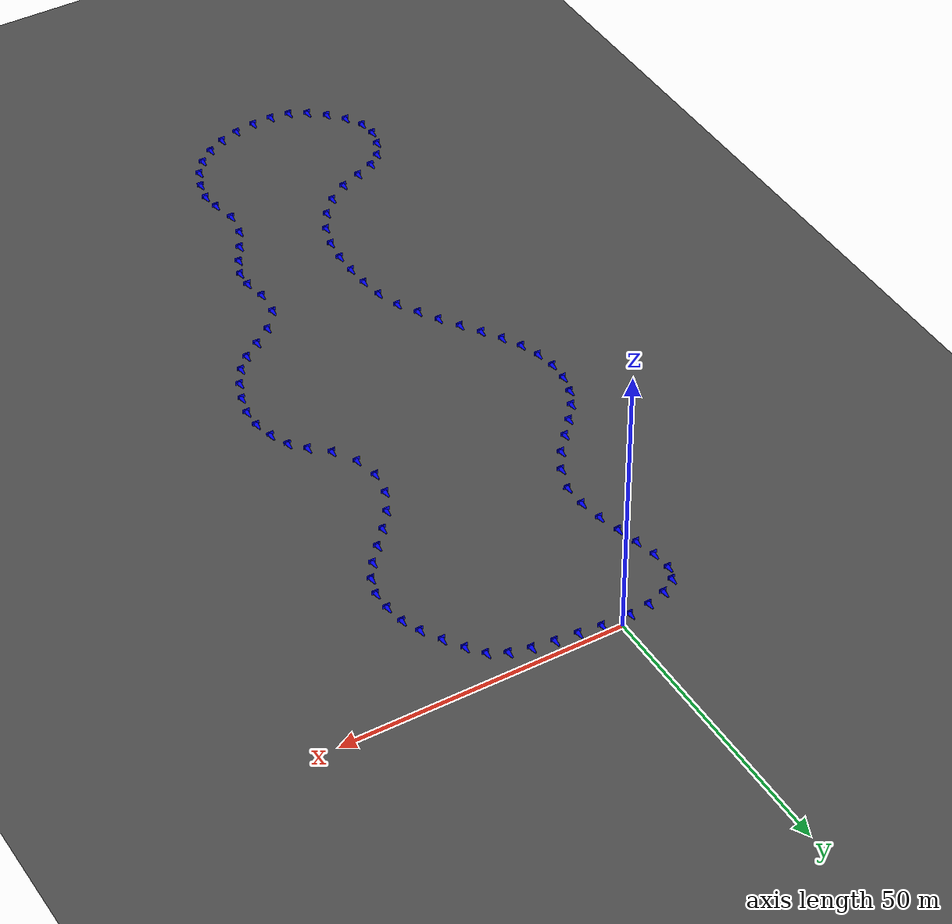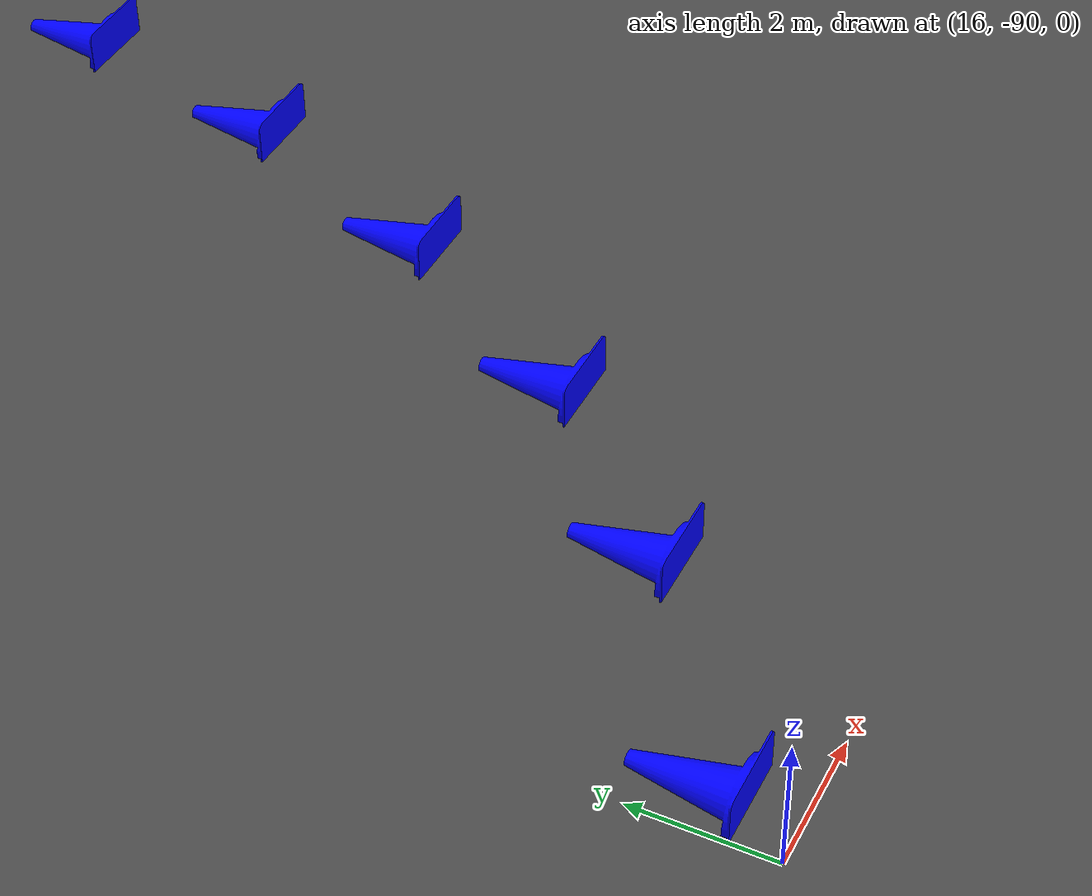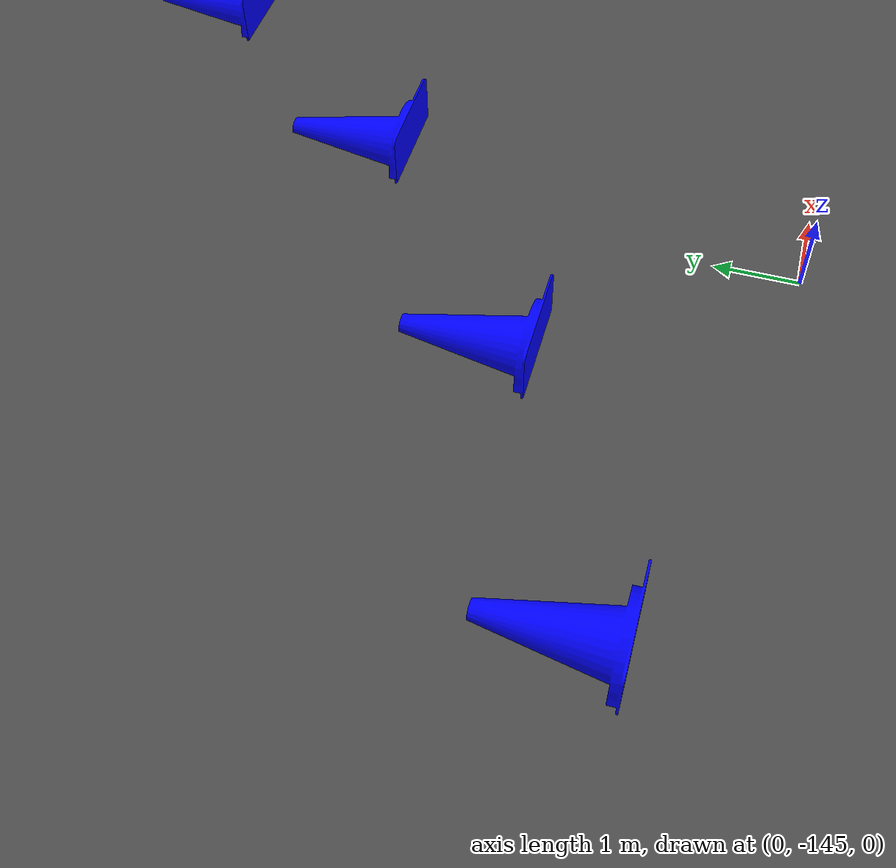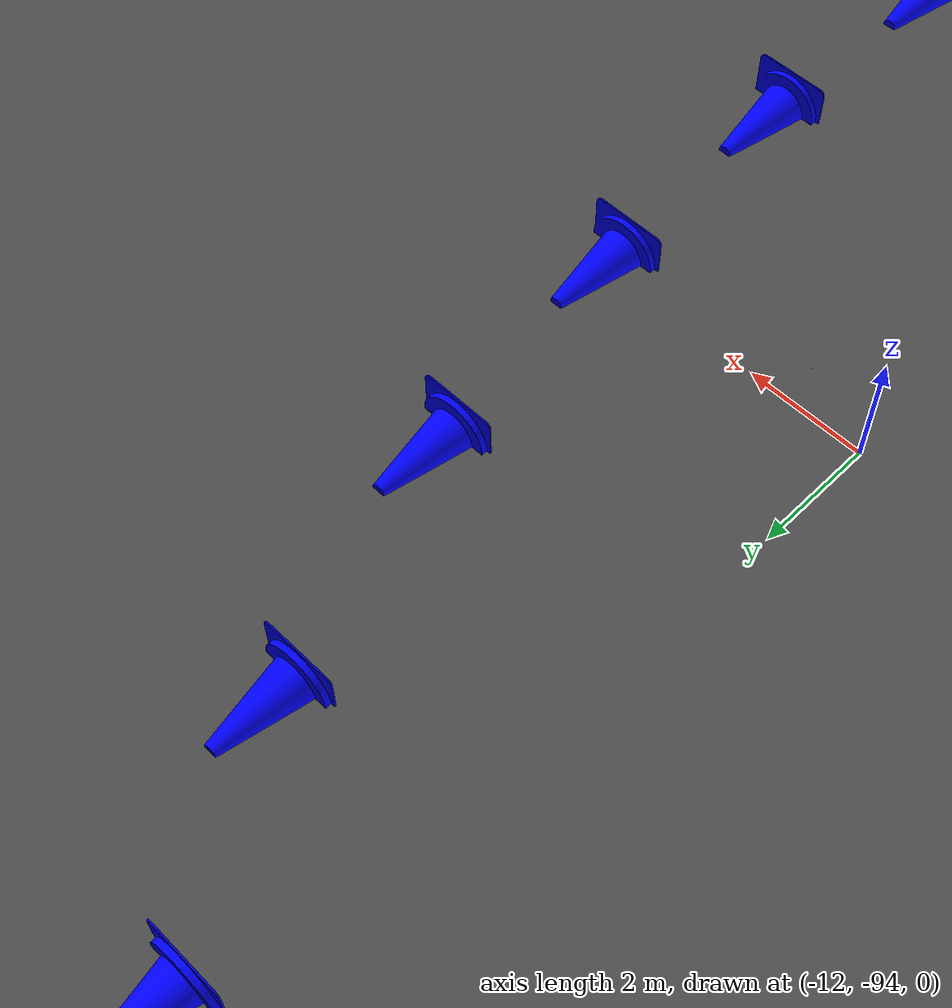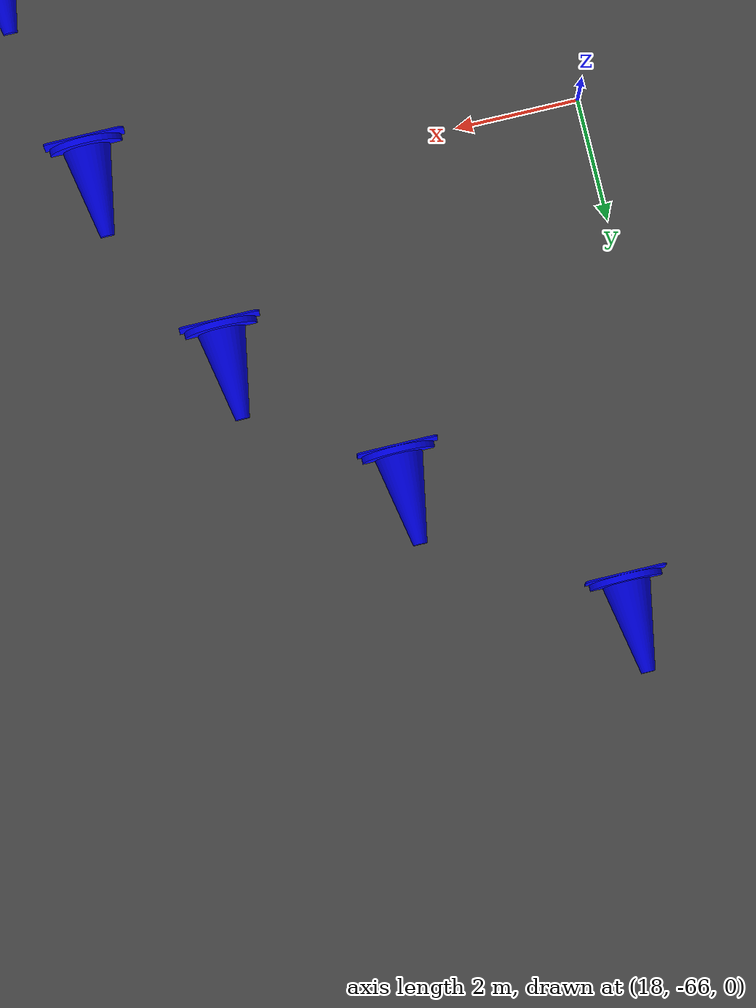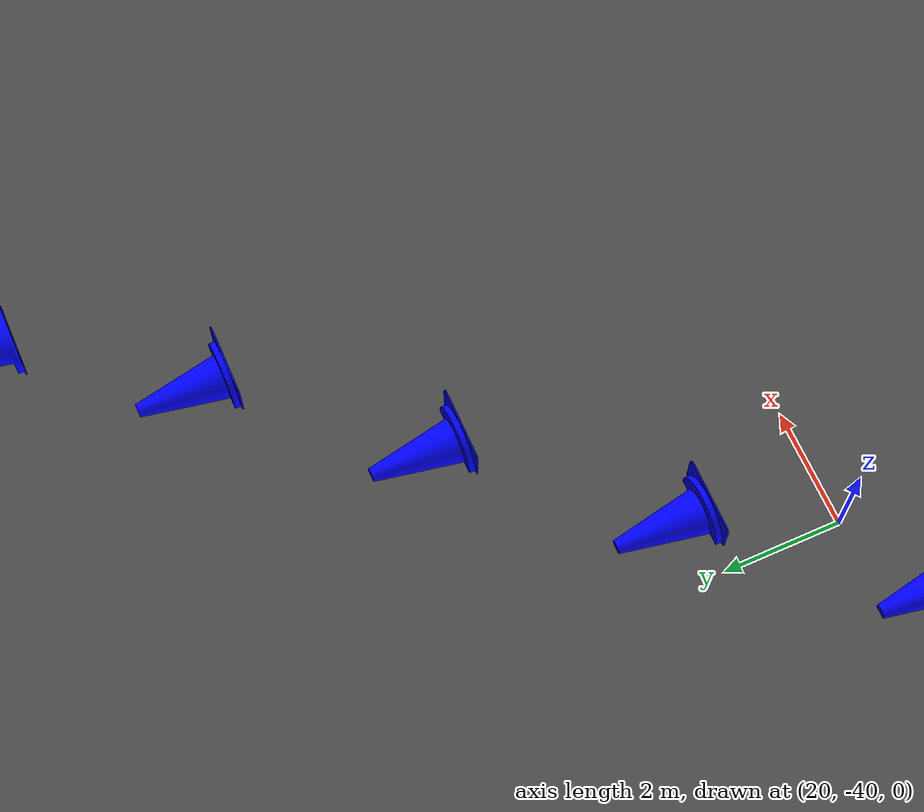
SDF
<sdf version="1.7">
 <world name="generated_world">
  <scene><sky><clouds><speed>12</speed></clouds></sky><grid>false</grid><shadows>1</shadows></scene>
  <physics type="ode">
   <max_step_size>0.001</max_step_size>
   <real_time_update_rate>1000</real_time_update_rate>
  </physics>
  <include><uri>model://sun</uri></include>
  <model name="asphalt_ground">
   <static>1</static>
   <link name="link">
    <collision name="collision">
     <geometry><plane><normal>0 0 1</normal><size>300 300</size></plane></geometry>
     <surface><friction><ode><mu>100</mu><mu2>50</mu2></ode></friction></surface>
    </collision>
    <visual name="visual">
     <geometry><plane><normal>0 0 1</normal><size>300 300</size></plane></geometry>
     <material>
      <script><uri>file://media/materials/scripts/gazebo.material</uri><name>Gazebo/Asphalt</name></script>
     </material>
    </visual>
   </link>
  </model>
  <include><uri>model://cone_yellow</uri><name>cone_yellow_001</name><pose>3.197 1.684 0 0 0 0</pose></include>
  <include><uri>model://cone_yellow</uri><name>cone_yellow_002</name><pose>7.122 1.213 0 0 0 0</pose></include>
  <include><uri>model://cone_yellow</uri><name>cone_yellow_003</name><pose>11.119 0.767 0 0 0 0</pose></include>
  <include><uri>model://cone_yellow</uri><name>cone_yellow_004</name><pose>15.181 0.193 0 0 0 0</pose></include>
  <include>
   <uri>model://cone_yellow</uri>
   <name>cone_yellow_005</name>
   <pose>19.338 -0.890 0 0 0 0</pose>
  </include>
  <include>
   <uri>model://cone_yellow</uri>
   <name>cone_yellow_006</name>
   <pose>23.351 -3.085 0 0 0 0</pose>
  </include>
  <include>
   <uri>model://cone_yellow</uri>
   <name>cone_yellow_007</name>
   <pose>26.184 -6.527 0 0 0 0</pose>
  </include>
  <include>
   <uri>model://cone_yellow</uri>
   <name>cone_yellow_008</name>
   <pose>28.433 -9.979 0 0 0 0</pose>
  </include>
  <include>
   <uri>model://cone_yellow</uri>
   <name>cone_yellow_009</name>
   <pose>30.431 -13.511 0 0 0 0</pose>
  </include>
  <include>
   <uri>model://cone_yellow</uri>
   <name>cone_yellow_010</name>
   <pose>32.136 -17.618 0 0 0 0</pose>
  </include>
  <include>
   <uri>model://cone_yellow</uri>
   <name>cone_yellow_011</name>
   <pose>32.737 -21.823 0 0 0 0</pose>
  </include>
  <include>
   <uri>model://cone_yellow</uri>
   <name>cone_yellow_012</name>
   <pose>32.688 -26.233 0 0 0 0</pose>
  </include>
  <include>
   <uri>model://cone_yellow</uri>
   <name>cone_yellow_013</name>
   <pose>31.369 -30.542 0 0 0 0</pose>
  </include>
  <include>
   <uri>model://cone_yellow</uri>
   <name>cone_yellow_014</name>
   <pose>28.975 -34.197 0 0 0 0</pose>
  </include>
  <include>
   <uri>model://cone_yellow</uri>
   <name>cone_yellow_015</name>
   <pose>26.334 -37.338 0 0 0 0</pose>
  </include>
  <include>
   <uri>model://cone_yellow</uri>
   <name>cone_yellow_016</name>
   <pose>23.710 -40.346 0 0 0 0</pose>
  </include>
  <include>
   <uri>model://cone_yellow</uri>
   <name>cone_yellow_017</name>
   <pose>21.326 -43.361 0 0 0 0</pose>
  </include>
  <include>
   <uri>model://cone_yellow</uri>
   <name>cone_yellow_018</name>
   <pose>19.756 -46.447 0 0 0 0</pose>
  </include>
  <include>
   <uri>model://cone_yellow</uri>
   <name>cone_yellow_019</name>
   <pose>19.249 -49.760 0 0 0 0</pose>
  </include>
  <include>
   <uri>model://cone_yellow</uri>
   <name>cone_yellow_020</name>
   <pose>19.963 -53.141 0 0 0 0</pose>
  </include>
  <include>
   <uri>model://cone_yellow</uri>
   <name>cone_yellow_021</name>
   <pose>21.626 -55.902 0 0 0 0</pose>
  </include>
  <include>
   <uri>model://cone_yellow</uri>
   <name>cone_yellow_022</name>
   <pose>24.478 -58.544 0 0 0 0</pose>
  </include>
  <include>
   <uri>model://cone_yellow</uri>
   <name>cone_yellow_023</name>
   <pose>27.421 -61.984 0 0 0 0</pose>
  </include>
  <include>
   <uri>model://cone_yellow</uri>
   <name>cone_yellow_024</name>
   <pose>29.118 -65.986 0 0 0 0</pose>
  </include>
  <include>
   <uri>model://cone_yellow</uri>
   <name>cone_yellow_025</name>
   <pose>30.031 -70.254 0 0 0 0</pose>
  </include>
  <include>
   <uri>model://cone_yellow</uri>
   <name>cone_yellow_026</name>
   <pose>29.912 -74.676 0 0 0 0</pose>
  </include>
  <include>
   <uri>model://cone_yellow</uri>
   <name>cone_yellow_027</name>
   <pose>28.874 -78.847 0 0 0 0</pose>
  </include>
  <include>
   <uri>model://cone_yellow</uri>
   <name>cone_yellow_028</name>
   <pose>27.242 -82.763 0 0 0 0</pose>
  </include>
  <include>
   <uri>model://cone_yellow</uri>
   <name>cone_yellow_029</name>
   <pose>25.074 -86.424 0 0 0 0</pose>
  </include>
  <include>
   <uri>model://cone_yellow</uri>
   <name>cone_yellow_030</name>
   <pose>21.994 -89.666 0 0 0 0</pose>
  </include>
  <include>
   <uri>model://cone_yellow</uri>
   <name>cone_yellow_031</name>
   <pose>18.642 -92.087 0 0 0 0</pose>
  </include>
  <include>
   <uri>model://cone_yellow</uri>
   <name>cone_yellow_032</name>
   <pose>15.556 -94.360 0 0 0 0</pose>
  </include>
  <include>
   <uri>model://cone_yellow</uri>
   <name>cone_yellow_033</name>
   <pose>13.571 -96.767 0 0 0 0</pose>
  </include>
  <include>
   <uri>model://cone_yellow</uri>
   <name>cone_yellow_034</name>
   <pose>13.372 -99.815 0 0 0 0</pose>
  </include>
  <include>
   <uri>model://cone_yellow</uri>
   <name>cone_yellow_035</name>
   <pose>14.025 -103.784 0 0 0 0</pose>
  </include>
  <include>
   <uri>model://cone_yellow</uri>
   <name>cone_yellow_036</name>
   <pose>13.699 -108.450 0 0 0 0</pose>
  </include>
  <include>
   <uri>model://cone_yellow</uri>
   <name>cone_yellow_037</name>
   <pose>11.925 -112.434 0 0 0 0</pose>
  </include>
  <include>
   <uri>model://cone_yellow</uri>
   <name>cone_yellow_038</name>
   <pose>9.906 -115.936 0 0 0 0</pose>
  </include>
  <include>
   <uri>model://cone_yellow</uri>
   <name>cone_yellow_039</name>
   <pose>8.196 -119.283 0 0 0 0</pose>
  </include>
  <include>
   <uri>model://cone_yellow</uri>
   <name>cone_yellow_040</name>
   <pose>7.655 -122.404 0 0 0 0</pose>
  </include>
  <include>
   <uri>model://cone_yellow</uri>
   <name>cone_yellow_041</name>
   <pose>8.419 -125.992 0 0 0 0</pose>
  </include>
  <include>
   <uri>model://cone_yellow</uri>
   <name>cone_yellow_042</name>
   <pose>8.920 -130.606 0 0 0 0</pose>
  </include>
  <include>
   <uri>model://cone_yellow</uri>
   <name>cone_yellow_043</name>
   <pose>7.909 -134.820 0 0 0 0</pose>
  </include>
  <include>
   <uri>model://cone_yellow</uri>
   <name>cone_yellow_044</name>
   <pose>6.163 -138.787 0 0 0 0</pose>
  </include>
  <include>
   <uri>model://cone_yellow</uri>
   <name>cone_yellow_045</name>
   <pose>3.499 -142.333 0 0 0 0</pose>
  </include>
  <include>
   <uri>model://cone_yellow</uri>
   <name>cone_yellow_046</name>
   <pose>0.156 -145.117 0 0 0 0</pose>
  </include>
  <include>
   <uri>model://cone_yellow</uri>
   <name>cone_yellow_047</name>
   <pose>-3.690 -147.165 0 0 0 0</pose>
  </include>
  <include>
   <uri>model://cone_yellow</uri>
   <name>cone_yellow_048</name>
   <pose>-7.822 -148.368 0 0 0 0</pose>
  </include>
  <include>
   <uri>model://cone_yellow</uri>
   <name>cone_yellow_049</name>
   <pose>-11.954 -149.016 0 0 0 0</pose>
  </include>
  <include>
   <uri>model://cone_yellow</uri>
   <name>cone_yellow_050</name>
   <pose>-16.214 -149.153 0 0 0 0</pose>
  </include>
  <include>
   <uri>model://cone_yellow</uri>
   <name>cone_yellow_051</name>
   <pose>-20.597 -148.425 0 0 0 0</pose>
  </include>
  <include>
   <uri>model://cone_yellow</uri>
   <name>cone_yellow_052</name>
   <pose>-24.606 -146.336 0 0 0 0</pose>
  </include>
  <include>
   <uri>model://cone_yellow</uri>
   <name>cone_yellow_053</name>
   <pose>-27.867 -143.547 0 0 0 0</pose>
  </include>
  <include>
   <uri>model://cone_yellow</uri>
   <name>cone_yellow_054</name>
   <pose>-30.646 -140.299 0 0 0 0</pose>
  </include>
  <include>
   <uri>model://cone_yellow</uri>
   <name>cone_yellow_055</name>
   <pose>-32.831 -136.395 0 0 0 0</pose>
  </include>
  <include>
   <uri>model://cone_yellow</uri>
   <name>cone_yellow_056</name>
   <pose>-33.408 -131.714 0 0 0 0</pose>
  </include>
  <include>
   <uri>model://cone_yellow</uri>
   <name>cone_yellow_057</name>
   <pose>-32.329 -127.342 0 0 0 0</pose>
  </include>
  <include>
   <uri>model://cone_yellow</uri>
   <name>cone_yellow_058</name>
   <pose>-30.155 -123.465 0 0 0 0</pose>
  </include>
  <include>
   <uri>model://cone_yellow</uri>
   <name>cone_yellow_059</name>
   <pose>-26.545 -120.421 0 0 0 0</pose>
  </include>
  <include>
   <uri>model://cone_yellow</uri>
   <name>cone_yellow_060</name>
   <pose>-22.642 -118.787 0 0 0 0</pose>
  </include>
  <include>
   <uri>model://cone_yellow</uri>
   <name>cone_yellow_061</name>
   <pose>-19.059 -117.369 0 0 0 0</pose>
  </include>
  <include>
   <uri>model://cone_yellow</uri>
   <name>cone_yellow_062</name>
   <pose>-16.238 -115.436 0 0 0 0</pose>
  </include>
  <include>
   <uri>model://cone_yellow</uri>
   <name>cone_yellow_063</name>
   <pose>-13.779 -112.693 0 0 0 0</pose>
  </include>
  <include>
   <uri>model://cone_yellow</uri>
   <name>cone_yellow_064</name>
   <pose>-11.950 -109.578 0 0 0 0</pose>
  </include>
  <include>
   <uri>model://cone_yellow</uri>
   <name>cone_yellow_065</name>
   <pose>-10.828 -106.149 0 0 0 0</pose>
  </include>
  <include>
   <uri>model://cone_yellow</uri>
   <name>cone_yellow_066</name>
   <pose>-10.374 -102.431 0 0 0 0</pose>
  </include>
  <include>
   <uri>model://cone_yellow</uri>
   <name>cone_yellow_067</name>
   <pose>-10.326 -98.575 0 0 0 0</pose>
  </include>
  <include>
   <uri>model://cone_yellow</uri>
   <name>cone_yellow_068</name>
   <pose>-10.560 -94.695 0 0 0 0</pose>
  </include>
  <include>
   <uri>model://cone_yellow</uri>
   <name>cone_yellow_069</name>
   <pose>-11.083 -90.897 0 0 0 0</pose>
  </include>
  <include>
   <uri>model://cone_yellow</uri>
   <name>cone_yellow_070</name>
   <pose>-12.175 -87.565 0 0 0 0</pose>
  </include>
  <include>
   <uri>model://cone_yellow</uri>
   <name>cone_yellow_071</name>
   <pose>-14.090 -84.218 0 0 0 0</pose>
  </include>
  <include>
   <uri>model://cone_yellow</uri>
   <name>cone_yellow_072</name>
   <pose>-16.078 -80.827 0 0 0 0</pose>
  </include>
  <include>
   <uri>model://cone_yellow</uri>
   <name>cone_yellow_073</name>
   <pose>-18.287 -77.560 0 0 0 0</pose>
  </include>
  <include>
   <uri>model://cone_yellow</uri>
   <name>cone_yellow_074</name>
   <pose>-20.578 -74.249 0 0 0 0</pose>
  </include>
  <include>
   <uri>model://cone_yellow</uri>
   <name>cone_yellow_075</name>
   <pose>-22.807 -70.826 0 0 0 0</pose>
  </include>
  <include>
   <uri>model://cone_yellow</uri>
   <name>cone_yellow_076</name>
   <pose>-24.823 -67.137 0 0 0 0</pose>
  </include>
  <include>
   <uri>model://cone_yellow</uri>
   <name>cone_yellow_077</name>
   <pose>-26.233 -63.060 0 0 0 0</pose>
  </include>
  <include>
   <uri>model://cone_yellow</uri>
   <name>cone_yellow_078</name>
   <pose>-26.950 -58.823 0 0 0 0</pose>
  </include>
  <include>
   <uri>model://cone_yellow</uri>
   <name>cone_yellow_079</name>
   <pose>-26.809 -54.457 0 0 0 0</pose>
  </include>
  <include>
   <uri>model://cone_yellow</uri>
   <name>cone_yellow_080</name>
   <pose>-25.766 -50.253 0 0 0 0</pose>
  </include>
  <include>
   <uri>model://cone_yellow</uri>
   <name>cone_yellow_081</name>
   <pose>-23.701 -46.305 0 0 0 0</pose>
  </include>
  <include>
   <uri>model://cone_yellow</uri>
   <name>cone_yellow_082</name>
   <pose>-21.118 -43.017 0 0 0 0</pose>
  </include>
  <include>
   <uri>model://cone_yellow</uri>
   <name>cone_yellow_083</name>
   <pose>-18.442 -39.989 0 0 0 0</pose>
  </include>
  <include>
   <uri>model://cone_yellow</uri>
   <name>cone_yellow_084</name>
   <pose>-15.929 -37.021 0 0 0 0</pose>
  </include>
  <include>
   <uri>model://cone_yellow</uri>
   <name>cone_yellow_085</name>
   <pose>-13.988 -33.866 0 0 0 0</pose>
  </include>
  <include>
   <uri>model://cone_yellow</uri>
   <name>cone_yellow_086</name>
   <pose>-12.875 -30.801 0 0 0 0</pose>
  </include>
  <include>
   <uri>model://cone_yellow</uri>
   <name>cone_yellow_087</name>
   <pose>-12.887 -27.045 0 0 0 0</pose>
  </include>
  <include>
   <uri>model://cone_yellow</uri>
   <name>cone_yellow_088</name>
   <pose>-13.489 -23.430 0 0 0 0</pose>
  </include>
  <include>
   <uri>model://cone_yellow</uri>
   <name>cone_yellow_089</name>
   <pose>-14.460 -19.610 0 0 0 0</pose>
  </include>
  <include>
   <uri>model://cone_yellow</uri>
   <name>cone_yellow_090</name>
   <pose>-15.474 -15.688 0 0 0 0</pose>
  </include>
  <include>
   <uri>model://cone_yellow</uri>
   <name>cone_yellow_091</name>
   <pose>-16.334 -11.649 0 0 0 0</pose>
  </include>
  <include>
   <uri>model://cone_yellow</uri>
   <name>cone_yellow_092</name>
   <pose>-16.681 -7.269 0 0 0 0</pose>
  </include>
  <include>
   <uri>model://cone_yellow</uri>
   <name>cone_yellow_093</name>
   <pose>-14.830 -2.582 0 0 0 0</pose>
  </include>
  <include>
   <uri>model://cone_yellow</uri>
   <name>cone_yellow_094</name>
   <pose>-10.935 0.094 0 0 0 0</pose>
  </include>
  <include><uri>model://cone_yellow</uri><name>cone_yellow_095</name><pose>-6.739 1.345 0 0 0 0</pose></include>
  <include><uri>model://cone_yellow</uri><name>cone_yellow_096</name><pose>-2.491 1.820 0 0 0 0</pose></include>
  <include><uri>model://cone_blue</uri><name>cone_blue_001</name><pose>2.723 -1.784 0 0 0 0</pose></include>
  <include><uri>model://cone_blue</uri><name>cone_blue_002</name><pose>6.738 -2.266 0 0 0 0</pose></include>
  <include><uri>model://cone_blue</uri><name>cone_blue_003</name><pose>10.706 -2.709 0 0 0 0</pose></include>
  <include><uri>model://cone_blue</uri><name>cone_blue_004</name><pose>14.574 -3.254 0 0 0 0</pose></include>
  <include><uri>model://cone_blue</uri><name>cone_blue_005</name><pose>18.131 -4.175 0 0 0 0</pose></include>
  <include><uri>model://cone_blue</uri><name>cone_blue_006</name><pose>21.125 -5.786 0 0 0 0</pose></include>
  <include><uri>model://cone_blue</uri><name>cone_blue_007</name><pose>23.310 -8.525 0 0 0 0</pose></include>
  <include><uri>model://cone_blue</uri><name>cone_blue_008</name><pose>25.434 -11.783 0 0 0 0</pose></include>
  <include><uri>model://cone_blue</uri><name>cone_blue_009</name><pose>27.369 -15.206 0 0 0 0</pose></include>
  <include><uri>model://cone_blue</uri><name>cone_blue_010</name><pose>28.736 -18.449 0 0 0 0</pose></include>
  <include><uri>model://cone_blue</uri><name>cone_blue_011</name><pose>29.254 -22.165 0 0 0 0</pose></include>
  <include><uri>model://cone_blue</uri><name>cone_blue_012</name><pose>29.225 -25.727 0 0 0 0</pose></include>
  <include><uri>model://cone_blue</uri><name>cone_blue_013</name><pose>28.206 -29.044 0 0 0 0</pose></include>
  <include><uri>model://cone_blue</uri><name>cone_blue_014</name><pose>26.225 -32.032 0 0 0 0</pose></include>
  <include><uri>model://cone_blue</uri><name>cone_blue_015</name><pose>23.699 -35.033 0 0 0 0</pose></include>
  <include><uri>model://cone_blue</uri><name>cone_blue_016</name><pose>21.047 -38.074 0 0 0 0</pose></include>
  <include><uri>model://cone_blue</uri><name>cone_blue_017</name><pose>18.456 -41.358 0 0 0 0</pose></include>
  <include><uri>model://cone_blue</uri><name>cone_blue_018</name><pose>16.434 -45.346 0 0 0 0</pose></include>
  <include><uri>model://cone_blue</uri><name>cone_blue_019</name><pose>15.751 -49.888 0 0 0 0</pose></include>
  <include><uri>model://cone_blue</uri><name>cone_blue_020</name><pose>16.662 -54.305 0 0 0 0</pose></include>
  <include><uri>model://cone_blue</uri><name>cone_blue_021</name><pose>19.090 -58.315 0 0 0 0</pose></include>
  <include><uri>model://cone_blue</uri><name>cone_blue_022</name><pose>22.109 -61.120 0 0 0 0</pose></include>
  <include><uri>model://cone_blue</uri><name>cone_blue_023</name><pose>24.378 -63.713 0 0 0 0</pose></include>
  <include><uri>model://cone_blue</uri><name>cone_blue_024</name><pose>25.788 -67.063 0 0 0 0</pose></include>
  <include><uri>model://cone_blue</uri><name>cone_blue_025</name><pose>26.548 -70.604 0 0 0 0</pose></include>
  <include><uri>model://cone_blue</uri><name>cone_blue_026</name><pose>26.453 -74.142 0 0 0 0</pose></include>
  <include><uri>model://cone_blue</uri><name>cone_blue_027</name><pose>25.557 -77.730 0 0 0 0</pose></include>
  <include><uri>model://cone_blue</uri><name>cone_blue_028</name><pose>24.111 -81.198 0 0 0 0</pose></include>
  <include><uri>model://cone_blue</uri><name>cone_blue_029</name><pose>22.204 -84.421 0 0 0 0</pose></include>
  <include><uri>model://cone_blue</uri><name>cone_blue_030</name><pose>19.803 -86.937 0 0 0 0</pose></include>
  <include><uri>model://cone_blue</uri><name>cone_blue_031</name><pose>16.658 -89.204 0 0 0 0</pose></include>
  <include><uri>model://cone_blue</uri><name>cone_blue_032</name><pose>13.292 -91.691 0 0 0 0</pose></include>
  <include><uri>model://cone_blue</uri><name>cone_blue_033</name><pose>10.325 -95.459 0 0 0 0</pose></include>
  <include><uri>model://cone_blue</uri><name>cone_blue_034</name><pose>9.902 -100.275 0 0 0 0</pose></include>
  <include><uri>model://cone_blue</uri><name>cone_blue_035</name><pose>10.550 -104.202 0 0 0 0</pose></include>
  <include><uri>model://cone_blue</uri><name>cone_blue_036</name><pose>10.350 -107.433 0 0 0 0</pose></include>
  <include><uri>model://cone_blue</uri><name>cone_blue_037</name><pose>8.856 -110.753 0 0 0 0</pose></include>
  <include><uri>model://cone_blue</uri><name>cone_blue_038</name><pose>6.874 -114.188 0 0 0 0</pose></include>
  <include><uri>model://cone_blue</uri><name>cone_blue_039</name><pose>4.947 -117.981 0 0 0 0</pose></include>
  <include><uri>model://cone_blue</uri><name>cone_blue_040</name><pose>4.164 -122.652 0 0 0 0</pose></include>
  <include><uri>model://cone_blue</uri><name>cone_blue_041</name><pose>5.034 -126.882 0 0 0 0</pose></include>
  <include><uri>model://cone_blue</uri><name>cone_blue_042</name><pose>5.449 -130.157 0 0 0 0</pose></include>
  <include><uri>model://cone_blue</uri><name>cone_blue_043</name><pose>4.589 -133.712 0 0 0 0</pose></include>
  <include><uri>model://cone_blue</uri><name>cone_blue_044</name><pose>3.118 -137.061 0 0 0 0</pose></include>
  <include><uri>model://cone_blue</uri><name>cone_blue_045</name><pose>0.994 -139.888 0 0 0 0</pose></include>
  <include><uri>model://cone_blue</uri><name>cone_blue_046</name><pose>-1.799 -142.214 0 0 0 0</pose></include>
  <include><uri>model://cone_blue</uri><name>cone_blue_047</name><pose>-5.002 -143.921 0 0 0 0</pose></include>
  <include><uri>model://cone_blue</uri><name>cone_blue_048</name><pose>-8.540 -144.942 0 0 0 0</pose></include>
  <include><uri>model://cone_blue</uri><name>cone_blue_049</name><pose>-12.307 -145.533 0 0 0 0</pose></include>
  <include><uri>model://cone_blue</uri><name>cone_blue_050</name><pose>-16.049 -145.657 0 0 0 0</pose></include>
  <include><uri>model://cone_blue</uri><name>cone_blue_051</name><pose>-19.538 -145.089 0 0 0 0</pose></include>
  <include><uri>model://cone_blue</uri><name>cone_blue_052</name><pose>-22.574 -143.486 0 0 0 0</pose></include>
  <include><uri>model://cone_blue</uri><name>cone_blue_053</name><pose>-25.387 -141.077 0 0 0 0</pose></include>
  <include><uri>model://cone_blue</uri><name>cone_blue_054</name><pose>-27.812 -138.244 0 0 0 0</pose></include>
  <include><uri>model://cone_blue</uri><name>cone_blue_055</name><pose>-29.551 -135.174 0 0 0 0</pose></include>
  <include><uri>model://cone_blue</uri><name>cone_blue_056</name><pose>-29.922 -132.018 0 0 0 0</pose></include>
  <include><uri>model://cone_blue</uri><name>cone_blue_057</name><pose>-29.083 -128.650 0 0 0 0</pose></include>
  <include><uri>model://cone_blue</uri><name>cone_blue_058</name><pose>-27.352 -125.562 0 0 0 0</pose></include>
  <include><uri>model://cone_blue</uri><name>cone_blue_059</name><pose>-24.926 -123.524 0 0 0 0</pose></include>
  <include><uri>model://cone_blue</uri><name>cone_blue_060</name><pose>-21.434 -122.072 0 0 0 0</pose></include>
  <include><uri>model://cone_blue</uri><name>cone_blue_061</name><pose>-17.572 -120.538 0 0 0 0</pose></include>
  <include><uri>model://cone_blue</uri><name>cone_blue_062</name><pose>-13.835 -117.981 0 0 0 0</pose></include>
  <include><uri>model://cone_blue</uri><name>cone_blue_063</name><pose>-10.966 -114.776 0 0 0 0</pose></include>
  <include><uri>model://cone_blue</uri><name>cone_blue_064</name><pose>-8.757 -111.010 0 0 0 0</pose></include>
  <include><uri>model://cone_blue</uri><name>cone_blue_065</name><pose>-7.404 -106.875 0 0 0 0</pose></include>
  <include><uri>model://cone_blue</uri><name>cone_blue_066</name><pose>-6.880 -102.628 0 0 0 0</pose></include>
  <include><uri>model://cone_blue</uri><name>cone_blue_067</name><pose>-6.827 -98.483 0 0 0 0</pose></include>
  <include><uri>model://cone_blue</uri><name>cone_blue_068</name><pose>-7.076 -94.365 0 0 0 0</pose></include>
  <include><uri>model://cone_blue</uri><name>cone_blue_069</name><pose>-7.650 -90.218 0 0 0 0</pose></include>
  <include><uri>model://cone_blue</uri><name>cone_blue_070</name><pose>-9.037 -86.015 0 0 0 0</pose></include>
  <include><uri>model://cone_blue</uri><name>cone_blue_071</name><pose>-11.070 -82.450 0 0 0 0</pose></include>
  <include><uri>model://cone_blue</uri><name>cone_blue_072</name><pose>-13.132 -78.938 0 0 0 0</pose></include>
  <include><uri>model://cone_blue</uri><name>cone_blue_073</name><pose>-15.412 -75.563 0 0 0 0</pose></include>
  <include><uri>model://cone_blue</uri><name>cone_blue_074</name><pose>-17.684 -72.280 0 0 0 0</pose></include>
  <include><uri>model://cone_blue</uri><name>cone_blue_075</name><pose>-19.823 -68.997 0 0 0 0</pose></include>
  <include><uri>model://cone_blue</uri><name>cone_blue_076</name><pose>-21.647 -65.666 0 0 0 0</pose></include>
  <include><uri>model://cone_blue</uri><name>cone_blue_077</name><pose>-22.844 -62.189 0 0 0 0</pose></include>
  <include><uri>model://cone_blue</uri><name>cone_blue_078</name><pose>-23.460 -58.562 0 0 0 0</pose></include>
  <include><uri>model://cone_blue</uri><name>cone_blue_079</name><pose>-23.344 -54.950 0 0 0 0</pose></include>
  <include><uri>model://cone_blue</uri><name>cone_blue_080</name><pose>-22.464 -51.413 0 0 0 0</pose></include>
  <include><uri>model://cone_blue</uri><name>cone_blue_081</name><pose>-20.824 -48.298 0 0 0 0</pose></include>
  <include><uri>model://cone_blue</uri><name>cone_blue_082</name><pose>-18.461 -45.295 0 0 0 0</pose></include>
  <include><uri>model://cone_blue</uri><name>cone_blue_083</name><pose>-15.828 -42.316 0 0 0 0</pose></include>
  <include><uri>model://cone_blue</uri><name>cone_blue_084</name><pose>-13.155 -39.155 0 0 0 0</pose></include>
  <include><uri>model://cone_blue</uri><name>cone_blue_085</name><pose>-10.901 -35.515 0 0 0 0</pose></include>
  <include><uri>model://cone_blue</uri><name>cone_blue_086</name><pose>-9.394 -31.158 0 0 0 0</pose></include>
  <include><uri>model://cone_blue</uri><name>cone_blue_087</name><pose>-9.390 -26.898 0 0 0 0</pose></include>
  <include><uri>model://cone_blue</uri><name>cone_blue_088</name><pose>-10.080 -22.638 0 0 0 0</pose></include>
  <include><uri>model://cone_blue</uri><name>cone_blue_089</name><pose>-11.076 -18.714 0 0 0 0</pose></include>
  <include><uri>model://cone_blue</uri><name>cone_blue_090</name><pose>-12.074 -14.855 0 0 0 0</pose></include>
  <include><uri>model://cone_blue</uri><name>cone_blue_091</name><pose>-12.883 -11.063 0 0 0 0</pose></include>
  <include><uri>model://cone_blue</uri><name>cone_blue_092</name><pose>-13.186 -7.447 0 0 0 0</pose></include>
  <include><uri>model://cone_blue</uri><name>cone_blue_093</name><pose>-12.217 -4.910 0 0 0 0</pose></include>
  <include><uri>model://cone_blue</uri><name>cone_blue_094</name><pose>-9.547 -3.119 0 0 0 0</pose></include>
  <include><uri>model://cone_blue</uri><name>cone_blue_095</name><pose>-6.080 -2.093 0 0 0 0</pose></include>
  <include><uri>model://cone_blue</uri><name>cone_blue_096</name><pose>-2.361 -1.677 0 0 0 0</pose></include>
 </world>
</sdf>

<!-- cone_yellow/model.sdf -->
<sdf version="1.6">
  <model name="cone_yellow">
    <static>1</static>
    <link name="link">

      <visual name="visual">
        <pose>0 0 0 0 0 0</pose>
        <geometry>
          <mesh>
            <uri>model://cone_yellow/meshes/cone.stl</uri>
            <scale>0.005 0.005 0.005</scale>
          </mesh>
        </geometry>
        <material>
          <ambient>1.0 1.0 0.0 1</ambient>
          <diffuse>1.0 1.0 0.0 1</diffuse>
        </material>
      </visual>

      <collision name="collision">
        <pose>0 0 0.15 0 0 0</pose>
        <geometry>
          <cylinder>
            <radius>0.1</radius>
            <length>0.3</length>
          </cylinder>
        </geometry>
        <surface>
          <friction>
            <ode>
              <mu>0.9</mu> <mu2>0.9</mu2> </ode>
          </friction>
        </surface>
      </collision>

      <inertial>
        <pose>0 0 0.05 0 0 0</pose>
        <mass>1</mass>
        <inertia>
          <ixx>0.01</ixx> <iyy>0.01</iyy> <izz>0.005</izz>
          <ixy>0.0</ixy> <ixz>0.0</ixz> <iyz>0.0</iyz>
        </inertia>
      </inertial>

    </link>
  </model>
</sdf>

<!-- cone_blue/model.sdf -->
<sdf version="1.6">
  <model name="cone_blue">
    <static>0</static>
    <link name="link">

      <inertial>
        <pose>0 0 0.05 0 0 0</pose> <mass>1</mass>
        <inertia>
          <ixx>0.01</ixx> <iyy>0.01</iyy> <izz>0.005</izz>
          <ixy>0.0</ixy> <ixz>0.0</ixz> <iyz>0.0</iyz>
        </inertia>
      </inertial>

      <collision name="collision">
        <pose>0 0 0.15 0 0 0</pose>
        <geometry>
          <cylinder>
            <radius>0.1</radius>
            <length>0.3</length>
          </cylinder>
        </geometry>
      </collision>

      <visual name="visual">
        <pose>0 0 0 0 0 0</pose>
        <geometry>
          <mesh>
            <uri>model://cone_blue/meshes/cone.stl</uri>
            <scale>0.005 0.005 0.005</scale>
          </mesh>
        </geometry>
        <material>
          <ambient>0.0 0.0 1.0 1</ambient>
          <diffuse>0.0 0.0 1.0 1</diffuse>
        </material>
      </visual>

    </link>
  </model>
</sdf>
